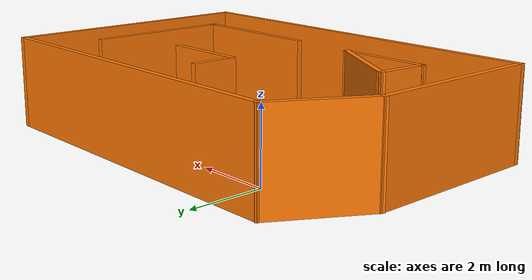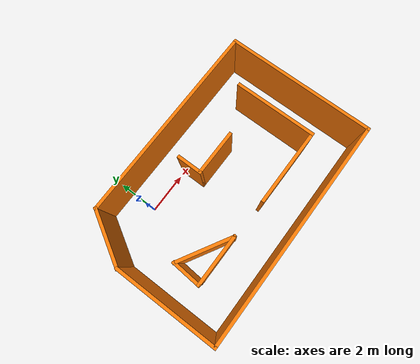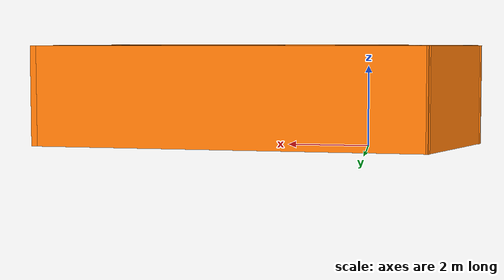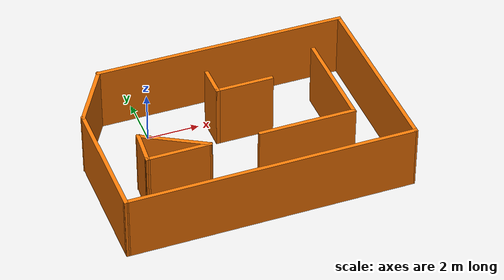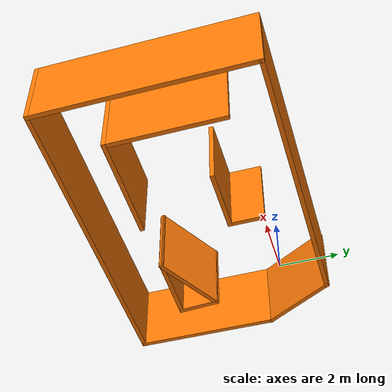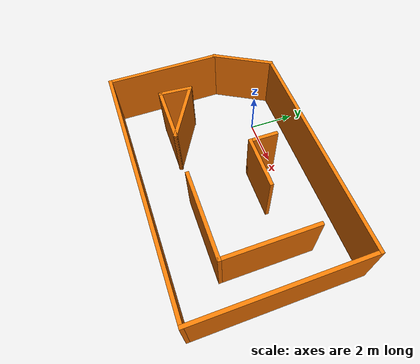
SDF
<?xml version='1.0'?>
<sdf version='1.6'>
  <model name='customWorld'>
    <pose frame=''>2.73228 -2.19445 0 0 -0 0</pose>
    <link name='Wall_43'>
      <collision name='Wall_43_Collision'>
        <geometry>
          <box>
            <size>5 0.15 2.5</size>
          </box>
        </geometry>
        <pose frame=''>0 0 1.25 0 -0 0</pose>
      </collision>
      <visual name='Wall_43_Visual'>
        <pose frame=''>0 0 1.25 0 -0 0</pose>
        <geometry>
          <box>
            <size>5 0.15 2.5</size>
          </box>
        </geometry>
        <material>
          <script>
            <uri>file://media/materials/scripts/gazebo.material</uri>
            <name>Gazebo/Grey</name>
          </script>
          <ambient>0.996078 0.47451 0.0196078 1</ambient>
        </material>
        <meta>
          <layer>0</layer>
        </meta>
      </visual>
      <pose frame=''>-5.43628 -1.13955 0 0 -0 1.5708</pose>
    </link>
    <link name='Wall_45'>
      <collision name='Wall_45_Collision'>
        <geometry>
          <box>
            <size>2.75 0.15 2.5</size>
          </box>
        </geometry>
        <pose frame=''>0 0 1.25 0 -0 0</pose>
      </collision>
      <visual name='Wall_45_Visual'>
        <pose frame=''>0 0 1.25 0 -0 0</pose>
        <geometry>
          <box>
            <size>2.75 0.15 2.5</size>
          </box>
        </geometry>
        <material>
          <script>
            <uri>file://media/materials/scripts/gazebo.material</uri>
            <name>Gazebo/Grey</name>
          </script>
          <ambient>0.996078 0.47451 0.0196078 1</ambient>
        </material>
        <meta>
          <layer>0</layer>
        </meta>
      </visual>
      <pose frame=''>-4.78628 2.41128 0 0 -0 1.0472</pose>
    </link>
    <link name='Wall_46'>
      <collision name='Wall_46_Collision'>
        <geometry>
          <box>
            <size>9.75 0.15 2.5</size>
          </box>
        </geometry>
        <pose frame=''>0 0 1.25 0 -0 0</pose>
      </collision>
      <visual name='Wall_46_Visual'>
        <pose frame=''>0 0 1.25 0 -0 0</pose>
        <geometry>
          <box>
            <size>9.75 0.15 2.5</size>
          </box>
        </geometry>
        <material>
          <script>
            <uri>file://media/materials/scripts/gazebo.material</uri>
            <name>Gazebo/Grey</name>
          </script>
          <ambient>0.996078 0.47451 0.0196078 1</ambient>
        </material>
        <meta>
          <layer>0</layer>
        </meta>
      </visual>
      <pose frame=''>0.66372 3.53711 0 0 -0 0</pose>
    </link>
    <link name='Wall_47'>
      <collision name='Wall_47_Collision'>
        <geometry>
          <box>
            <size>7.25 0.15 2.5</size>
          </box>
        </geometry>
        <pose frame=''>0 0 1.25 0 -0 0</pose>
      </collision>
      <visual name='Wall_47_Visual'>
        <pose frame=''>0 0 1.25 0 -0 0</pose>
        <geometry>
          <box>
            <size>7.25 0.15 2.5</size>
          </box>
        </geometry>
        <material>
          <script>
            <uri>file://media/materials/scripts/gazebo.material</uri>
            <name>Gazebo/Grey</name>
          </script>
          <ambient>0.996078 0.47451 0.0196078 1</ambient>
        </material>
        <meta>
          <layer>0</layer>
        </meta>
      </visual>
      <pose frame=''>5.46372 -0.012887 0 0 -0 -1.5708</pose>
    </link>
    <link name='Wall_48'>
      <collision name='Wall_48_Collision'>
        <geometry>
          <box>
            <size>11.05 0.15 2.5</size>
          </box>
        </geometry>
        <pose frame=''>0 0 1.25 0 -0 0</pose>
      </collision>
      <visual name='Wall_48_Visual'>
        <pose frame=''>0 0 1.25 0 -0 0</pose>
        <geometry>
          <box>
            <size>11.05 0.15 2.5</size>
          </box>
        </geometry>
        <material>
          <script>
            <uri>file://media/materials/scripts/gazebo.material</uri>
            <name>Gazebo/Grey</name>
          </script>
          <ambient>0.996078 0.47451 0.0196078 1</ambient>
        </material>
        <meta>
          <layer>0</layer>
        </meta>
      </visual>
      <pose frame=''>0.01372 -3.56372 0 0 -0 -3.14144</pose>
    </link>
    <link name='Wall_50'>
      <collision name='Wall_50_Collision'>
        <geometry>
          <box>
            <size>4 0.15 2.5</size>
          </box>
        </geometry>
        <pose frame=''>0 0 1.25 0 -0 0</pose>
      </collision>
      <visual name='Wall_50_Visual'>
        <pose frame=''>0 0 1.25 0 -0 0</pose>
        <geometry>
          <box>
            <size>4 0.15 2.5</size>
          </box>
        </geometry>
        <material>
          <script>
            <uri>file://media/materials/scripts/gazebo.material</uri>
            <name>Gazebo/Grey</name>
          </script>
          <ambient>0.996078 0.47451 0.0196078 1</ambient>
        </material>
        <meta>
          <layer>0</layer>
        </meta>
      </visual>
      <pose frame=''>3.83272 0.168447 0 0 -0 -1.5708</pose>
    </link>
    <link name='Wall_51'>
      <collision name='Wall_51_Collision'>
        <geometry>
          <box>
            <size>3.75 0.15 2.5</size>
          </box>
        </geometry>
        <pose frame=''>0 0 1.25 0 -0 0</pose>
      </collision>
      <visual name='Wall_51_Visual'>
        <pose frame=''>0 0 1.25 0 -0 0</pose>
        <geometry>
          <box>
            <size>3.75 0.15 2.5</size>
          </box>
        </geometry>
        <material>
          <script>
            <uri>file://media/materials/scripts/gazebo.material</uri>
            <name>Gazebo/Grey</name>
          </script>
          <ambient>0.996078 0.47451 0.0196078 1</ambient>
        </material>
        <meta>
          <layer>0</layer>
        </meta>
      </visual>
      <pose frame=''>2.03272 -1.75655 0 0 -0 3.14159</pose>
    </link>
    <link name='Wall_53'>
      <collision name='Wall_53_Collision'>
        <geometry>
          <box>
            <size>2.5 0.15 2.5</size>
          </box>
        </geometry>
        <pose frame=''>0 0 1.25 0 -0 0</pose>
      </collision>
      <visual name='Wall_53_Visual'>
        <pose frame=''>0 0 1.25 0 -0 0</pose>
        <geometry>
          <box>
            <size>2.5 0.15 2.5</size>
          </box>
        </geometry>
        <material>
          <script>
            <uri>file://media/materials/scripts/gazebo.material</uri>
            <name>Gazebo/Grey</name>
          </script>
          <ambient>0.996078 0.47451 0.0196078 1</ambient>
        </material>
        <meta>
          <layer>0</layer>
        </meta>
      </visual>
      <pose frame=''>-2.83528 -1.67855 0 0 -0 0</pose>
    </link>
    <link name='Wall_54'>
      <collision name='Wall_54_Collision'>
        <geometry>
          <box>
            <size>2.75 0.15 2.5</size>
          </box>
        </geometry>
        <pose frame=''>0 0 1.25 0 -0 0</pose>
      </collision>
      <visual name='Wall_54_Visual'>
        <pose frame=''>0 0 1.25 0 -0 0</pose>
        <geometry>
          <box>
            <size>2.75 0.15 2.5</size>
          </box>
        </geometry>
        <material>
          <script>
            <uri>file://media/materials/scripts/gazebo.material</uri>
            <name>Gazebo/Grey</name>
          </script>
          <ambient>0.996078 0.47451 0.0196078 1</ambient>
        </material>
        <meta>
          <layer>0</layer>
        </meta>
      </visual>
      <pose frame=''>-2.78611 -1.02855 0 0 -0 2.61799</pose>
    </link>
    <link name='Wall_55'>
      <collision name='Wall_55_Collision'>
        <geometry>
          <box>
            <size>1.45371 0.15 2.5</size>
          </box>
        </geometry>
        <pose frame=''>0 0 1.25 0 -0 0</pose>
      </collision>
      <visual name='Wall_55_Visual'>
        <pose frame=''>0 0 1.25 0 -0 0</pose>
        <geometry>
          <box>
            <size>1.45371 0.15 2.5</size>
          </box>
        </geometry>
        <material>
          <script>
            <uri>file://media/materials/scripts/gazebo.material</uri>
            <name>Gazebo/Grey</name>
          </script>
          <ambient>0.996078 0.47451 0.0196078 1</ambient>
        </material>
        <meta>
          <layer>0</layer>
        </meta>
      </visual>
      <pose frame=''>-3.96111 -1.02855 0 0 -0 -1.64629</pose>
    </link>
    <link name='Wall_57'>
      <collision name='Wall_57_Collision'>
        <geometry>
          <box>
            <size>1.25 0.15 2.5</size>
          </box>
        </geometry>
        <pose frame=''>0 0 1.25 0 -0 0</pose>
      </collision>
      <visual name='Wall_57_Visual'>
        <pose frame=''>0 0 1.25 0 -0 0</pose>
        <geometry>
          <box>
            <size>1.25 0.15 2.5</size>
          </box>
        </geometry>
        <material>
          <script>
            <uri>file://media/materials/scripts/gazebo.material</uri>
            <name>Gazebo/Grey</name>
          </script>
          <ambient>0.996078 0.47451 0.0196078 1</ambient>
        </material>
        <meta>
          <layer>0</layer>
        </meta>
      </visual>
      <pose frame=''>-0.37628 1.61245 0 0 -0 -1.5708</pose>
    </link>
    <link name='Wall_58'>
      <collision name='Wall_58_Collision'>
        <geometry>
          <box>
            <size>2.25 0.15 2.5</size>
          </box>
        </geometry>
        <pose frame=''>0 0 1.25 0 -0 0</pose>
      </collision>
      <visual name='Wall_58_Visual'>
        <pose frame=''>0 0 1.25 0 -0 0</pose>
        <geometry>
          <box>
            <size>2.25 0.15 2.5</size>
          </box>
        </geometry>
        <material>
          <script>
            <uri>file://media/materials/scripts/gazebo.material</uri>
            <name>Gazebo/Grey</name>
          </script>
          <ambient>0.996078 0.47451 0.0196078 1</ambient>
        </material>
        <meta>
          <layer>0</layer>
        </meta>
      </visual>
      <pose frame=''>0.67372 1.06245 0 0 -0 0</pose>
    </link>
    <static>1</static>
  </model>
</sdf>
